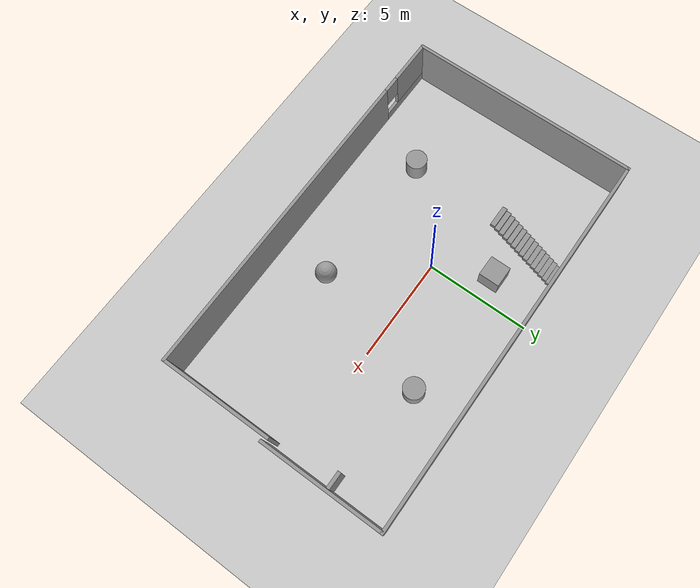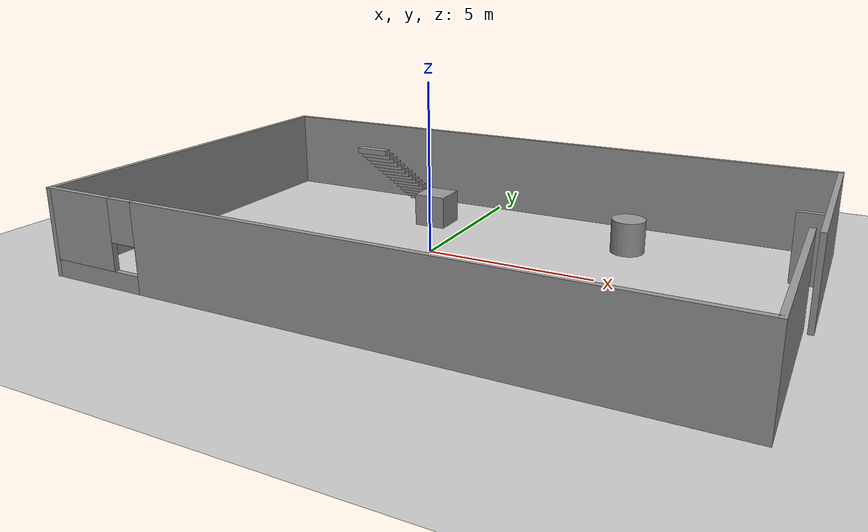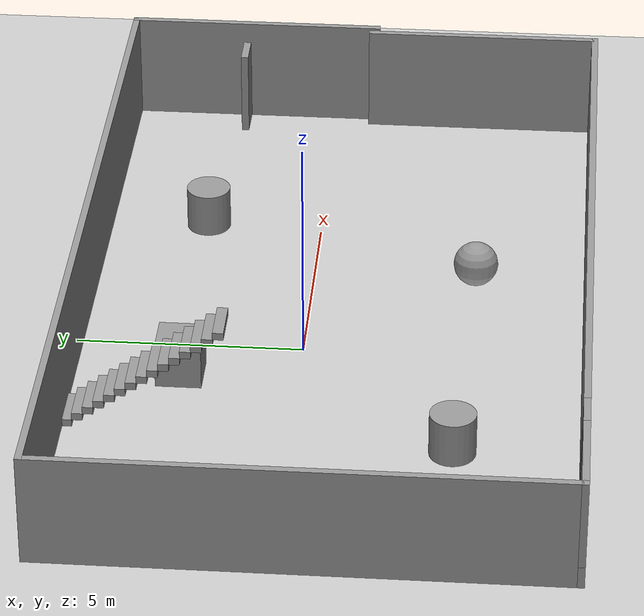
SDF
<sdf version="1.7">
 <world name="default">
  <light name="sun" type="directional">
   <pose>0 0 10 0 -0 0</pose>
   <diffuse>0.8 0.8 0.8 1</diffuse>
   <specular>0.2 0.2 0.2 1</specular>
   <attenuation>
    <range>1000</range>
    <constant>0.9</constant>
    <linear>0.01</linear>
    <quadratic>0.001</quadratic>
   </attenuation>
   <direction>-0.5 0.1 -0.9</direction>
   <spot><inner_angle>0</inner_angle><outer_angle>0</outer_angle><falloff>0</falloff></spot>
  </light>
  <model name="ground_plane">
   <static>1</static>
   <link name="link">
    <collision name="collision">
     <geometry><plane><normal>0 0 1</normal><size>100 100</size></plane></geometry>
     <surface>
      <contact><collide_bitmask>65535</collide_bitmask></contact>
      <friction><ode><mu>100</mu><mu2>50</mu2></ode></friction>
     </surface>
    </collision>
    <visual name="visual">
     <cast_shadows>0</cast_shadows>
     <geometry><plane><normal>0 0 1</normal><size>100 100</size></plane></geometry>
     <material>
      <script><uri>file://media/materials/scripts/gazebo.material</uri><name>Gazebo/Grey</name></script>
     </material>
    </visual>
   </link>
  </model>
  <gravity>0 0 -9.8</gravity>
  <magnetic_field>6e-06 2.3e-05 -4.2e-05</magnetic_field>
  <atmosphere type="adiabatic"/>
  <physics type="ode">
   <max_step_size>0.001</max_step_size>
   <real_time_factor>1</real_time_factor>
   <real_time_update_rate>1000</real_time_update_rate>
  </physics>
  <scene><ambient>0.4 0.4 0.4 1</ambient><background>0.7 0.7 0.7 1</background><shadows>1</shadows></scene>
  <spherical_coordinates>
   <surface_model>EARTH_WGS84</surface_model>
   <latitude_deg>0</latitude_deg>
   <longitude_deg>0</longitude_deg>
   <elevation>0</elevation>
   <heading_deg>0</heading_deg>
  </spherical_coordinates>
  <model name="Untitled">
   <pose>1.24 -0.62 0 0 -0 0</pose>
   <link name="Door_0">
    <collision name="Door_0_Collision">
     <geometry><box><size>0.9 0.17 2</size></box></geometry>
     <pose>0 0 1 0 -0 0</pose>
    </collision>
    <visual name="Door_0_Visual">
     <pose>0 0 1 0 -0 0</pose>
     <geometry><box><size>0.9 0.17 2</size></box></geometry>
     <material>
      <script><uri>file://media/materials/scripts/gazebo.material</uri><name>Gazebo/Grey</name></script>
     </material>
    </visual>
    <pose>8.89467 2.84821 0 0 -0 0</pose>
   </link>
   <link name="Stairs_0">
    <visual name="Stairs_0_Visual_0">
     <pose>-4.05847 5.38665 0.083333 0 -0 0</pose>
     <geometry><box><size>1 0.233333 0.166667</size></box></geometry>
     <material>
      <script><uri>file://media/materials/scripts/gazebo.material</uri><name>Gazebo/Grey</name></script>
      <ambient>1 1 1 1</ambient>
     </material>
     <meta><layer>0</layer></meta>
    </visual>
    <collision name="Stairs_0_Collision_0">
     <geometry><box><size>1 0.233333 0.166667</size></box></geometry>
     <pose>-4.05847 5.38665 0.083333 0 -0 0</pose>
    </collision>
    <visual name="Stairs_0_Visual_1">
     <pose>-4.05847 5.15332 0.25 0 -0 0</pose>
     <geometry><box><size>1 0.233333 0.166667</size></box></geometry>
     <material>
      <script><uri>file://media/materials/scripts/gazebo.material</uri><name>Gazebo/Grey</name></script>
      <ambient>1 1 1 1</ambient>
     </material>
     <meta><layer>0</layer></meta>
    </visual>
    <collision name="Stairs_0_Collision_1">
     <geometry><box><size>1 0.233333 0.166667</size></box></geometry>
     <pose>-4.05847 5.15332 0.25 0 -0 0</pose>
    </collision>
    <visual name="Stairs_0_Visual_2">
     <pose>-4.05847 4.91998 0.416667 0 -0 0</pose>
     <geometry><box><size>1 0.233333 0.166667</size></box></geometry>
     <material>
      <script><uri>file://media/materials/scripts/gazebo.material</uri><name>Gazebo/Grey</name></script>
      <ambient>1 1 1 1</ambient>
     </material>
     <meta><layer>0</layer></meta>
    </visual>
    <collision name="Stairs_0_Collision_2">
     <geometry><box><size>1 0.233333 0.166667</size></box></geometry>
     <pose>-4.05847 4.91998 0.416667 0 -0 0</pose>
    </collision>
    <visual name="Stairs_0_Visual_3">
     <pose>-4.05847 4.68665 0.583333 0 -0 0</pose>
     <geometry><box><size>1 0.233333 0.166667</size></box></geometry>
     <material>
      <script><uri>file://media/materials/scripts/gazebo.material</uri><name>Gazebo/Grey</name></script>
      <ambient>1 1 1 1</ambient>
     </material>
     <meta><layer>0</layer></meta>
    </visual>
    <collision name="Stairs_0_Collision_3">
     <geometry><box><size>1 0.233333 0.166667</size></box></geometry>
     <pose>-4.05847 4.68665 0.583333 0 -0 0</pose>
    </collision>
    <visual name="Stairs_0_Visual_4">
     <pose>-4.05847 4.45332 0.75 0 -0 0</pose>
     <geometry><box><size>1 0.233333 0.166667</size></box></geometry>
     <material>
      <script><uri>file://media/materials/scripts/gazebo.material</uri><name>Gazebo/Grey</name></script>
      <ambient>1 1 1 1</ambient>
     </material>
     <meta><layer>0</layer></meta>
    </visual>
    <collision name="Stairs_0_Collision_4">
     <geometry><box><size>1 0.233333 0.166667</size></box></geometry>
     <pose>-4.05847 4.45332 0.75 0 -0 0</pose>
    </collision>
    <visual name="Stairs_0_Visual_5">
     <pose>-4.05847 4.21998 0.916667 0 -0 0</pose>
     <geometry><box><size>1 0.233333 0.166667</size></box></geometry>
     <material>
      <script><uri>file://media/materials/scripts/gazebo.material</uri><name>Gazebo/Grey</name></script>
      <ambient>1 1 1 1</ambient>
     </material>
     <meta><layer>0</layer></meta>
    </visual>
    <collision name="Stairs_0_Collision_5">
     <geometry><box><size>1 0.233333 0.166667</size></box></geometry>
     <pose>-4.05847 4.21998 0.916667 0 -0 0</pose>
    </collision>
    <visual name="Stairs_0_Visual_6">
     <pose>-4.05847 3.98665 1.08333 0 -0 0</pose>
     <geometry><box><size>1 0.233333 0.166667</size></box></geometry>
     <material>
      <script><uri>file://media/materials/scripts/gazebo.material</uri><name>Gazebo/Grey</name></script>
      <ambient>1 1 1 1</ambient>
     </material>
     <meta><layer>0</layer></meta>
    </visual>
    <collision name="Stairs_0_Collision_6">
     <geometry><box><size>1 0.233333 0.166667</size></box></geometry>
     <pose>-4.05847 3.98665 1.08333 0 -0 0</pose>
    </collision>
    <visual name="Stairs_0_Visual_7">
     <pose>-4.05847 3.75332 1.25 0 -0 0</pose>
     <geometry><box><size>1 0.233333 0.166667</size></box></geometry>
     <material>
      <script><uri>file://media/materials/scripts/gazebo.material</uri><name>Gazebo/Grey</name></script>
      <ambient>1 1 1 1</ambient>
     </material>
     <meta><layer>0</layer></meta>
    </visual>
    <collision name="Stairs_0_Collision_7">
     <geometry><box><size>1 0.233333 0.166667</size></box></geometry>
     <pose>-4.05847 3.75332 1.25 0 -0 0</pose>
    </collision>
    <visual name="Stairs_0_Visual_8">
     <pose>-4.05847 3.51998 1.41667 0 -0 0</pose>
     <geometry><box><size>1 0.233333 0.166667</size></box></geometry>
     <material>
      <script><uri>file://media/materials/scripts/gazebo.material</uri><name>Gazebo/Grey</name></script>
      <ambient>1 1 1 1</ambient>
     </material>
     <meta><layer>0</layer></meta>
    </visual>
    <collision name="Stairs_0_Collision_8">
     <geometry><box><size>1 0.233333 0.166667</size></box></geometry>
     <pose>-4.05847 3.51998 1.41667 0 -0 0</pose>
    </collision>
    <visual name="Stairs_0_Visual_9">
     <pose>-4.05847 3.28665 1.58333 0 -0 0</pose>
     <geometry><box><size>1 0.233333 0.166667</size></box></geometry>
     <material>
      <script><uri>file://media/materials/scripts/gazebo.material</uri><name>Gazebo/Grey</name></script>
      <ambient>1 1 1 1</ambient>
     </material>
     <meta><layer>0</layer></meta>
    </visual>
    <collision name="Stairs_0_Collision_9">
     <geometry><box><size>1 0.233333 0.166667</size></box></geometry>
     <pose>-4.05847 3.28665 1.58333 0 -0 0</pose>
    </collision>
    <visual name="Stairs_0_Visual_10">
     <pose>-4.05847 3.05332 1.75 0 -0 0</pose>
     <geometry><box><size>1 0.233333 0.166667</size></box></geometry>
     <material>
      <script><uri>file://media/materials/scripts/gazebo.material</uri><name>Gazebo/Grey</name></script>
      <ambient>1 1 1 1</ambient>
     </material>
     <meta><layer>0</layer></meta>
    </visual>
    <collision name="Stairs_0_Collision_10">
     <geometry><box><size>1 0.233333 0.166667</size></box></geometry>
     <pose>-4.05847 3.05332 1.75 0 -0 0</pose>
    </collision>
    <visual name="Stairs_0_Visual_11">
     <pose>-4.05847 2.81998 1.91667 0 -0 0</pose>
     <geometry><box><size>1 0.233333 0.166667</size></box></geometry>
     <material>
      <script><uri>file://media/materials/scripts/gazebo.material</uri><name>Gazebo/Grey</name></script>
      <ambient>1 1 1 1</ambient>
     </material>
     <meta><layer>0</layer></meta>
    </visual>
    <collision name="Stairs_0_Collision_11">
     <geometry><box><size>1 0.233333 0.166667</size></box></geometry>
     <pose>-4.05847 2.81998 1.91667 0 -0 0</pose>
    </collision>
    <visual name="Stairs_0_Visual_12">
     <pose>-4.05847 2.58665 2.08333 0 -0 0</pose>
     <geometry><box><size>1 0.233333 0.166667</size></box></geometry>
     <material>
      <script><uri>file://media/materials/scripts/gazebo.material</uri><name>Gazebo/Grey</name></script>
      <ambient>1 1 1 1</ambient>
     </material>
     <meta><layer>0</layer></meta>
    </visual>
    <collision name="Stairs_0_Collision_12">
     <geometry><box><size>1 0.233333 0.166667</size></box></geometry>
     <pose>-4.05847 2.58665 2.08333 0 -0 0</pose>
    </collision>
    <visual name="Stairs_0_Visual_13">
     <pose>-4.05847 2.35332 2.25 0 -0 0</pose>
     <geometry><box><size>1 0.233333 0.166667</size></box></geometry>
     <material>
      <script><uri>file://media/materials/scripts/gazebo.material</uri><name>Gazebo/Grey</name></script>
      <ambient>1 1 1 1</ambient>
     </material>
     <meta><layer>0</layer></meta>
    </visual>
    <collision name="Stairs_0_Collision_13">
     <geometry><box><size>1 0.233333 0.166667</size></box></geometry>
     <pose>-4.05847 2.35332 2.25 0 -0 0</pose>
    </collision>
    <visual name="Stairs_0_Visual_14">
     <pose>-4.05847 2.11998 2.41667 0 -0 0</pose>
     <geometry><box><size>1 0.233333 0.166667</size></box></geometry>
     <material>
      <script><uri>file://media/materials/scripts/gazebo.material</uri><name>Gazebo/Grey</name></script>
      <ambient>1 1 1 1</ambient>
     </material>
     <meta><layer>0</layer></meta>
    </visual>
    <collision name="Stairs_0_Collision_14">
     <geometry><box><size>1 0.233333 0.166667</size></box></geometry>
     <pose>-4.05847 2.11998 2.41667 0 -0 0</pose>
    </collision>
   </link>
   <link name="Wall_2">
    <collision name="Wall_2_Collision">
     <geometry><box><size>5.5 0.15 2.5</size></box></geometry>
     <pose>0 0 1.25 0 -0 0</pose>
    </collision>
    <visual name="Wall_2_Visual">
     <pose>0 0 1.25 0 -0 0</pose>
     <geometry><box><size>5.5 0.15 2.5</size></box></geometry>
     <material>
      <script><uri>file://media/materials/scripts/gazebo.material</uri><name>Gazebo/Grey</name></script>
      <ambient>1 1 1 1</ambient>
     </material>
     <meta><layer>0</layer></meta>
    </visual>
    <pose>9.05 -2.875 0 0 -0 1.5708</pose>
   </link>
   <link name="Wall_5">
    <pose>-0.125 -5.55 0 0 -0 3.14159</pose>
    <visual name="Wall_5_Visual_0">
     <pose>-1.51065 0 1.25 0 -0 0</pose>
     <geometry><box><size>15.4787 0.15 2.5</size></box></geometry>
     <material>
      <script><uri>file://media/materials/scripts/gazebo.material</uri><name>Gazebo/Grey</name></script>
      <ambient>1 1 1 1</ambient>
     </material>
     <meta><layer>0</layer></meta>
    </visual>
    <collision name="Wall_5_Collision_0">
     <geometry><box><size>15.4787 0.15 2.5</size></box></geometry>
     <pose>-1.51065 0 1.25 0 -0 0</pose>
    </collision>
    <visual name="Wall_5_Visual_1">
     <pose>7.73935 0 0.25 0 -0 0</pose>
     <geometry><box><size>3.02131 0.15 0.5</size></box></geometry>
     <material>
      <script><uri>file://media/materials/scripts/gazebo.material</uri><name>Gazebo/Grey</name></script>
      <ambient>1 1 1 1</ambient>
     </material>
     <meta><layer>0</layer></meta>
    </visual>
    <collision name="Wall_5_Collision_1">
     <geometry><box><size>3.02131 0.15 0.5</size></box></geometry>
     <pose>7.73935 0 0.25 0 -0 0</pose>
    </collision>
    <visual name="Wall_5_Visual_2">
     <pose>8.13935 0 1.5 0 -0 0</pose>
     <geometry><box><size>2.22131 0.15 2</size></box></geometry>
     <material>
      <script><uri>file://media/materials/scripts/gazebo.material</uri><name>Gazebo/Grey</name></script>
      <ambient>1 1 1 1</ambient>
     </material>
     <meta><layer>0</layer></meta>
    </visual>
    <collision name="Wall_5_Collision_2">
     <geometry><box><size>2.22131 0.15 2</size></box></geometry>
     <pose>8.13935 0 1.5 0 -0 0</pose>
    </collision>
    <visual name="Wall_5_Visual_3">
     <pose>6.62869 0 1.9 0 -0 0</pose>
     <geometry><box><size>0.8 0.15 1.2</size></box></geometry>
     <material>
      <script><uri>file://media/materials/scripts/gazebo.material</uri><name>Gazebo/Grey</name></script>
      <ambient>1 1 1 1</ambient>
     </material>
     <meta><layer>0</layer></meta>
    </visual>
    <collision name="Wall_5_Collision_3">
     <geometry><box><size>0.8 0.15 1.2</size></box></geometry>
     <pose>6.62869 0 1.9 0 -0 0</pose>
    </collision>
   </link>
   <link name="Wall_6">
    <collision name="Wall_6_Collision">
     <geometry><box><size>11.25 0.15 2.5</size></box></geometry>
     <pose>0 0 1.25 0 -0 0</pose>
    </collision>
    <visual name="Wall_6_Visual">
     <pose>0 0 1.25 0 -0 0</pose>
     <geometry><box><size>11.25 0.15 2.5</size></box></geometry>
     <material>
      <script><uri>file://media/materials/scripts/gazebo.material</uri><name>Gazebo/Grey</name></script>
      <ambient>1 1 1 1</ambient>
     </material>
     <meta><layer>0</layer></meta>
    </visual>
    <pose>-9.3 -0 0 0 -0 1.5708</pose>
   </link>
   <link name="Wall_7">
    <collision name="Wall_7_Collision">
     <geometry><box><size>18.75 0.15 2.5</size></box></geometry>
     <pose>0 0 1.25 0 -0 0</pose>
    </collision>
    <visual name="Wall_7_Visual">
     <pose>0 0 1.25 0 -0 0</pose>
     <geometry><box><size>18.75 0.15 2.5</size></box></geometry>
     <material>
      <script><uri>file://media/materials/scripts/gazebo.material</uri><name>Gazebo/Grey</name></script>
      <ambient>1 1 1 1</ambient>
     </material>
     <meta><layer>0</layer></meta>
    </visual>
    <pose>0 5.55 0 0 -0 0</pose>
   </link>
   <link name="Wall_8">
    <collision name="Wall_8_Collision">
     <geometry><box><size>6 0.15 2.5</size></box></geometry>
     <pose>0 0 1.25 0 -0 0</pose>
    </collision>
    <visual name="Wall_8_Visual">
     <pose>0 0 1.25 0 -0 0</pose>
     <geometry><box><size>6 0.15 2.5</size></box></geometry>
     <material>
      <script><uri>file://media/materials/scripts/gazebo.material</uri><name>Gazebo/Grey</name></script>
      <ambient>1 1 1 1</ambient>
     </material>
     <meta><layer>0</layer></meta>
    </visual>
    <pose>9.3 2.625 0 0 -0 -1.5708</pose>
   </link>
   <static>1</static>
  </model>
  <model name="unit_cylinder">
   <pose>-3.6843 -3.42978 0.499993 -3e-06 -3e-06 0</pose>
   <link name="link">
    <inertial>
     <mass>1</mass>
     <inertia><ixx>0.145833</ixx><ixy>0</ixy><ixz>0</ixz><iyy>0.145833</iyy><iyz>0</iyz><izz>0.125</izz></inertia>
    </inertial>
    <collision name="collision">
     <geometry><cylinder><radius>0.5</radius><length>1</length></cylinder></geometry>
    </collision>
    <visual name="visual">
     <geometry><cylinder><radius>0.5</radius><length>1</length></cylinder></geometry>
     <material>
      <script><name>Gazebo/Grey</name><uri>file://media/materials/scripts/gazebo.material</uri></script>
     </material>
    </visual>
   </link>
  </model>
  <model name="unit_sphere">
   <pose>3.09138 -3.64556 0.5 0 -0 0</pose>
   <link name="link">
    <inertial>
     <mass>1</mass>
     <inertia><ixx>0.1</ixx><ixy>0</ixy><ixz>0</ixz><iyy>0.1</iyy><iyz>0</iyz><izz>0.1</izz></inertia>
    </inertial>
    <collision name="collision"><geometry><sphere><radius>0.5</radius></sphere></geometry></collision>
    <visual name="visual">
     <geometry><sphere><radius>0.5</radius></sphere></geometry>
     <material>
      <script><name>Gazebo/Grey</name><uri>file://media/materials/scripts/gazebo.material</uri></script>
     </material>
    </visual>
   </link>
  </model>
  <model name="unit_cylinder_0">
   <pose>5.16444 2.62949 0.499993 -3e-06 -4e-06 -0</pose>
   <link name="link">
    <inertial>
     <mass>1</mass>
     <inertia><ixx>0.145833</ixx><ixy>0</ixy><ixz>0</ixz><iyy>0.145833</iyy><iyz>0</iyz><izz>0.125</izz></inertia>
    </inertial>
    <collision name="collision">
     <geometry><cylinder><radius>0.5</radius><length>1</length></cylinder></geometry>
    </collision>
    <visual name="visual">
     <geometry><cylinder><radius>0.5</radius><length>1</length></cylinder></geometry>
     <material>
      <script><name>Gazebo/Grey</name><uri>file://media/materials/scripts/gazebo.material</uri></script>
     </material>
    </visual>
   </link>
  </model>
  <model name="unit_box">
   <pose>-1.15924 2.57347 0.5 0 -0 0</pose>
   <link name="link">
    <inertial>
     <mass>1</mass>
     <inertia>
      <ixx>0.166667</ixx>
      <ixy>0</ixy>
      <ixz>0</ixz>
      <iyy>0.166667</iyy>
      <iyz>0</iyz>
      <izz>0.166667</izz>
     </inertia>
    </inertial>
    <collision name="collision"><geometry><box><size>1 1 1</size></box></geometry></collision>
    <visual name="visual">
     <geometry><box><size>1 1 1</size></box></geometry>
     <material>
      <script><name>Gazebo/Grey</name><uri>file://media/materials/scripts/gazebo.material</uri></script>
     </material>
    </visual>
   </link>
  </model>
 </world>
</sdf>
